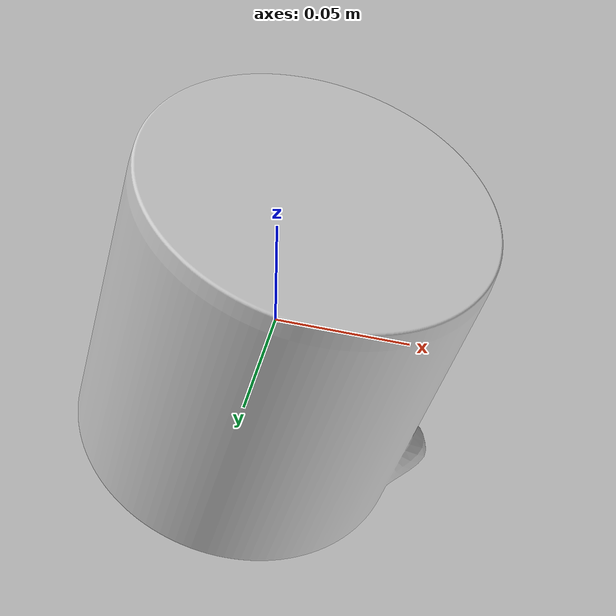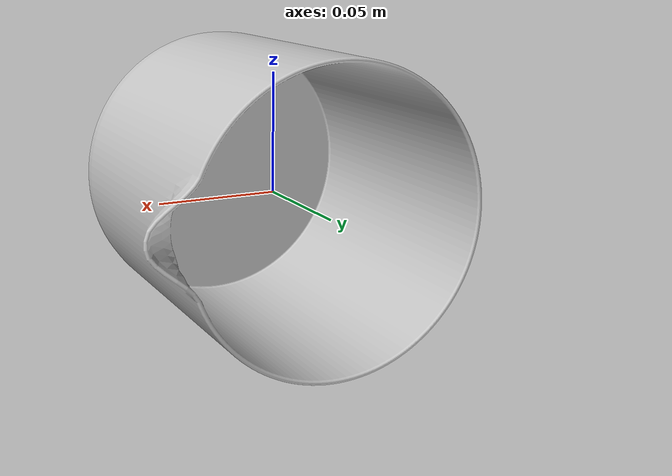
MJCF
<mujoco model="beaker">
  <default>
    <default class="visual">
      <geom group="2" type="mesh" contype="0" conaffinity="0"/>
    </default>
    <default class="collision">
      <geom group="3" type="mesh"/>
    </default>
  </default>
  <asset>
    <material name="Material.001" specular="0.0" shininess="0.0" rgba="0.800000 0.800000 0.800000 1.000000"/>
    <mesh file="beaker.obj"/>
    <mesh file="beaker_collision_0.obj"/>
    <mesh file="beaker_collision_1.obj"/>
    <mesh file="beaker_collision_2.obj"/>
    <mesh file="beaker_collision_3.obj"/>
    <mesh file="beaker_collision_4.obj"/>
    <mesh file="beaker_collision_5.obj"/>
    <mesh file="beaker_collision_6.obj"/>
    <mesh file="beaker_collision_7.obj"/>
    <mesh file="beaker_collision_8.obj"/>
    <mesh file="beaker_collision_9.obj"/>
    <mesh file="beaker_collision_10.obj"/>
    <mesh file="beaker_collision_11.obj"/>
    <mesh file="beaker_collision_12.obj"/>
    <mesh file="beaker_collision_13.obj"/>
    <mesh file="beaker_collision_14.obj"/>
    <mesh file="beaker_collision_15.obj"/>
    <mesh file="beaker_collision_16.obj"/>
    <mesh file="beaker_collision_17.obj"/>
    <mesh file="beaker_collision_18.obj"/>
    <mesh file="beaker_collision_19.obj"/>
    <mesh file="beaker_collision_20.obj"/>
    <mesh file="beaker_collision_21.obj"/>
    <mesh file="beaker_collision_22.obj"/>
    <mesh file="beaker_collision_23.obj"/>
    <mesh file="beaker_collision_24.obj"/>
    <mesh file="beaker_collision_25.obj"/>
    <mesh file="beaker_collision_26.obj"/>
    <mesh file="beaker_collision_27.obj"/>
  </asset>
  <worldbody>
    <body name="beaker">
      <geom material="Material.001" mesh="beaker" class="visual"/>
      <geom mesh="beaker_collision_0" rgba="0.6472536329456102 0.4396942138391502 0.682030230767006 1" class="collision"/>
      <geom mesh="beaker_collision_1" rgba="0.2611862365204677 0.3791444371428938 0.8935659687833938 1" class="collision"/>
      <geom mesh="beaker_collision_2" rgba="0.9732076864445693 0.055109910266483264 0.39021817745264176 1" class="collision"/>
      <geom mesh="beaker_collision_3" rgba="0.2315301336172102 0.5208944412234564 0.5312109964737274 1" class="collision"/>
      <geom mesh="beaker_collision_4" rgba="0.26679956925324555 0.6388514513757515 0.5121388804409872 1" class="collision"/>
      <geom mesh="beaker_collision_5" rgba="0.7627107212843193 0.9896380037621093 0.5587776773044645 1" class="collision"/>
      <geom mesh="beaker_collision_6" rgba="0.06959080894425751 0.592944665464714 0.7840556037608998 1" class="collision"/>
      <geom mesh="beaker_collision_7" rgba="0.9368659407794765 0.20301607994370252 0.11950765525972429 1" class="collision"/>
      <geom mesh="beaker_collision_8" rgba="0.759661946797216 0.7276243312462397 0.41119352815226895 1" class="collision"/>
      <geom mesh="beaker_collision_9" rgba="0.33367870001784317 0.3802188469478093 0.37663720300806114 1" class="collision"/>
      <geom mesh="beaker_collision_10" rgba="0.36313845379228527 0.45809997474070163 0.06142801931406605 1" class="collision"/>
      <geom mesh="beaker_collision_11" rgba="0.618192031065002 0.20340477733107976 0.7621231824149617 1" class="collision"/>
      <geom mesh="beaker_collision_12" rgba="0.9354442154369634 0.6034613303024858 0.672662043192988 1" class="collision"/>
      <geom mesh="beaker_collision_13" rgba="0.970946634295416 0.7488737351983674 0.7938928031209649 1" class="collision"/>
      <geom mesh="beaker_collision_14" rgba="0.4192063400035614 0.5202501886769342 0.4638755599714147 1" class="collision"/>
      <geom mesh="beaker_collision_15" rgba="0.18870037605319356 0.1074265196983244 0.7846376340506596 1" class="collision"/>
      <geom mesh="beaker_collision_16" rgba="0.4227858830954989 0.9960803284375119 0.1733084476937159 1" class="collision"/>
      <geom mesh="beaker_collision_17" rgba="0.7646174759918876 0.25573803147080953 0.5290326895588409 1" class="collision"/>
      <geom mesh="beaker_collision_18" rgba="0.6080606688698498 0.13782465796064225 0.25697607257343225 1" class="collision"/>
      <geom mesh="beaker_collision_19" rgba="0.05297321216594175 0.6634247647025419 0.8484929906537362 1" class="collision"/>
      <geom mesh="beaker_collision_20" rgba="0.5475127873455184 0.6372215273181222 0.9398062206501112 1" class="collision"/>
      <geom mesh="beaker_collision_21" rgba="0.3399191842555941 0.4720399542401287 0.3722680887762456 1" class="collision"/>
      <geom mesh="beaker_collision_22" rgba="0.647997163828088 0.39154767651469513 0.6615446338587118 1" class="collision"/>
      <geom mesh="beaker_collision_23" rgba="0.023462123262170564 0.5811272170692787 0.3888981488685024 1" class="collision"/>
      <geom mesh="beaker_collision_24" rgba="0.14711579404335484 0.045579237521771954 0.7665415664266443 1" class="collision"/>
      <geom mesh="beaker_collision_25" rgba="0.33769779692028723 0.7810643205742546 0.7986820853818708 1" class="collision"/>
      <geom mesh="beaker_collision_26" rgba="0.532085162445755 0.1816830487545117 0.05479357931566764 1" class="collision"/>
      <geom mesh="beaker_collision_27" rgba="0.7944370910403091 0.15141442589173182 0.7773945190976062 1" class="collision"/>
    </body>
  </worldbody>
</mujoco>
